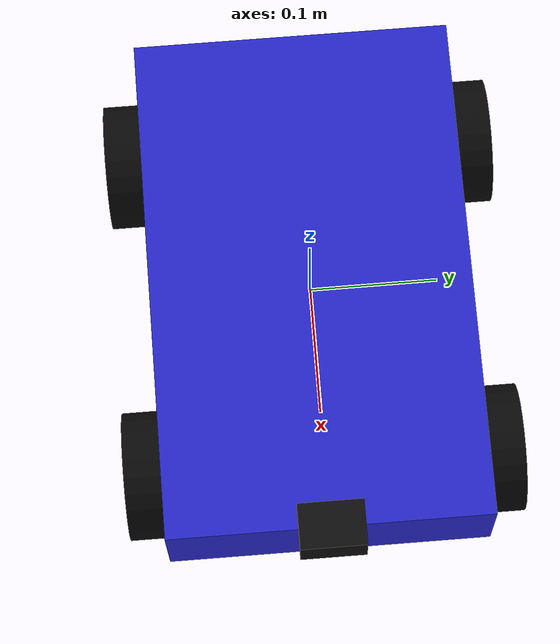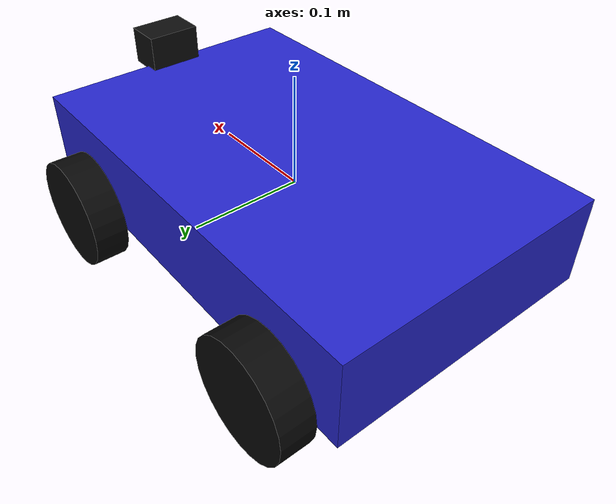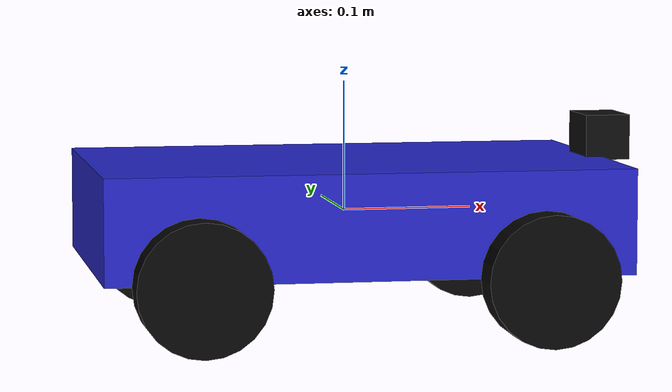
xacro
<?xml version="1.0"?>

<robot xmlns:xacro="http://www.ros.org/wiki/xacro" name="iot_car">

  <!-- Zusätzliche Xacro-Dateien                                 -->

  <xacro:include filename="camera.xacro"/>

  <!-- Fahrzeugmaße                                              -->
  <!-- x = vorne/hinten, y = links/rechts, z = oben/unten       -->

  <xacro:property name="body_length" value="0.40"/>
  <xacro:property name="body_width" value="0.25"/>
  <xacro:property name="body_height" value="0.08"/>

  <xacro:property name="wheel_radius" value="0.05"/>
  <xacro:property name="wheel_width" value="0.03"/>

  <xacro:property name="front_x" value="0.13"/>
  <xacro:property name="rear_x" value="-0.13"/>

  <xacro:property name="left_y" value="0.14"/>
  <xacro:property name="right_y" value="-0.14"/>

  <xacro:property name="wheel_z" value="-0.04"/>

  <!-- Materialien                                               -->

  <material name="blue">
    <color rgba="0.15 0.15 0.8 1.0"/>
  </material>

  <material name="black">
    <color rgba="0.03 0.03 0.03 1.0"/>
  </material>

  <!-- Chassis                                                   -->

  <link name="base_link">

    <visual>
      <geometry>
        <box size="${body_length} ${body_width} ${body_height}"/>
      </geometry>

      <material name="blue"/>
    </visual>

    <collision>
      <geometry>
        <box size="${body_length} ${body_width} ${body_height}"/>
      </geometry>
    </collision>

    <inertial>
      <mass value="1.0"/>

      <inertia
        ixx="0.00574"
        ixy="0.0"
        ixz="0.0"
        iyy="0.01387"
        iyz="0.0"
        izz="0.01854"/>
    </inertial>

  </link>

  <!-- Frontkamera                                               -->

  <xacro:front_camera parent="base_link"/>

  <!-- Rad-Makro                                                 -->

  <xacro:macro name="wheel_link" params="name">

    <link name="${name}">

      <visual>
        <origin rpy="1.5708 0 0"/>

        <geometry>
          <cylinder
            radius="${wheel_radius}"
            length="${wheel_width}"/>
        </geometry>

        <material name="black"/>
      </visual>

      <collision>
        <origin rpy="1.5708 0 0"/>

        <geometry>
          <cylinder
            radius="${wheel_radius}"
            length="${wheel_width}"/>
        </geometry>
      </collision>

      <inertial>
        <mass value="0.1"/>

        <inertia
          ixx="0.00007"
          ixy="0.0"
          ixz="0.0"
          iyy="0.000125"
          iyz="0.0"
          izz="0.00007"/>
      </inertial>

    </link>

  </xacro:macro>

  <!-- Vorderrad links                                           -->

  <link name="front_left_steering_link">

    <inertial>
      <mass value="0.02"/>

      <inertia
        ixx="0.00001"
        ixy="0.0"
        ixz="0.0"
        iyy="0.00001"
        iyz="0.0"
        izz="0.00001"/>
    </inertial>

  </link>

  <joint name="front_left_steering_joint" type="revolute">

    <parent link="base_link"/>
    <child link="front_left_steering_link"/>

    <origin xyz="${front_x} ${left_y} ${wheel_z}"/>

    <axis xyz="0 0 1"/>

    <limit
      lower="-0.6"
      upper="0.6"
      effort="5.0"
      velocity="2.0"/>

    <dynamics damping="0.5"/>

  </joint>

  <xacro:wheel_link name="front_left_wheel"/>

  <joint name="front_left_wheel_joint" type="continuous">

    <parent link="front_left_steering_link"/>
    <child link="front_left_wheel"/>

    <axis xyz="0 1 0"/>

    <dynamics damping="0.05"/>

  </joint>

  <!-- Vorderrad rechts                                          -->

  <link name="front_right_steering_link">

    <inertial>
      <mass value="0.02"/>

      <inertia
        ixx="0.00001"
        ixy="0.0"
        ixz="0.0"
        iyy="0.00001"
        iyz="0.0"
        izz="0.00001"/>
    </inertial>

  </link>

  <joint name="front_right_steering_joint" type="revolute">

    <parent link="base_link"/>
    <child link="front_right_steering_link"/>

    <origin xyz="${front_x} ${right_y} ${wheel_z}"/>

    <axis xyz="0 0 1"/>

    <limit
      lower="-0.6"
      upper="0.6"
      effort="5.0"
      velocity="2.0"/>

    <dynamics damping="0.5"/>

  </joint>

  <xacro:wheel_link name="front_right_wheel"/>

  <joint name="front_right_wheel_joint" type="continuous">

    <parent link="front_right_steering_link"/>
    <child link="front_right_wheel"/>

    <axis xyz="0 1 0"/>

    <dynamics damping="0.05"/>

  </joint>

  <!-- Hinterrad links                                           -->

  <xacro:wheel_link name="rear_left_wheel"/>

  <joint name="rear_left_wheel_joint" type="continuous">

    <parent link="base_link"/>
    <child link="rear_left_wheel"/>

    <origin xyz="${rear_x} ${left_y} ${wheel_z}"/>

    <axis xyz="0 1 0"/>

    <dynamics damping="0.05"/>

  </joint>

  <!-- Hinterrad rechts                                          -->

  <xacro:wheel_link name="rear_right_wheel"/>

  <joint name="rear_right_wheel_joint" type="continuous">

    <parent link="base_link"/>
    <child link="rear_right_wheel"/>

    <origin xyz="${rear_x} ${right_y} ${wheel_z}"/>

    <axis xyz="0 1 0"/>

    <dynamics damping="0.05"/>

  </joint>

  <!-- ROS 2 Control                                             -->

  <ros2_control name="GazeboSimSystem" type="system">

    <hardware>
      <plugin>gz_ros2_control/GazeboSimSystem</plugin>
    </hardware>

    <joint name="rear_right_wheel_joint">

      <command_interface name="velocity"/>

      <state_interface name="position"/>
      <state_interface name="velocity"/>

    </joint>

    <joint name="rear_left_wheel_joint">

      <command_interface name="velocity"/>

      <state_interface name="position"/>
      <state_interface name="velocity"/>

    </joint>

    <joint name="front_right_steering_joint">

      <command_interface name="position">
        <param name="min">-0.6</param>
        <param name="max">0.6</param>
      </command_interface>

      <state_interface name="position"/>
      <state_interface name="velocity"/>

    </joint>

    <joint name="front_left_steering_joint">

      <command_interface name="position">
        <param name="min">-0.6</param>
        <param name="max">0.6</param>
      </command_interface>

      <state_interface name="position"/>
      <state_interface name="velocity"/>

    </joint>

    <joint name="front_right_wheel_joint">

      <state_interface name="position"/>
      <state_interface name="velocity"/>

    </joint>

    <joint name="front_left_wheel_joint">

      <state_interface name="position"/>
      <state_interface name="velocity"/>

    </joint>

  </ros2_control>

  <!-- Gazebo ROS 2 Control Plugin                               -->

  <gazebo>

    <plugin
      filename="libgz_ros2_control-system.so"
      name="gz_ros2_control::GazeboSimROS2ControlPlugin">

      <parameters>
        $(find iot_car_description)/config/iot_car_controllers.yaml
      </parameters>

    </plugin>

  </gazebo>

  <!-- Ground-Truth-Fahrzeugposition                             -->

  <gazebo>

    <plugin
      filename="gz-sim-pose-publisher-system"
      name="gz::sim::systems::PosePublisher">

      <publish_link_pose>false</publish_link_pose>

      <publish_visual_pose>false</publish_visual_pose>

      <publish_collision_pose>false</publish_collision_pose>

      <publish_sensor_pose>false</publish_sensor_pose>

      <publish_model_pose>true</publish_model_pose>

      <publish_nested_model_pose>false</publish_nested_model_pose>

      <use_pose_vector_msg>false</use_pose_vector_msg>

      <update_frequency>30</update_frequency>

      <topic>/car/ground_truth_pose</topic>

    </plugin>

  </gazebo>

</robot>

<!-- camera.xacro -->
<robot xmlns:xacro="http://www.ros.org/wiki/xacro">

  <xacro:macro name="front_camera" params="parent">

    <!-- Kamera-Gehäuse                                         -->

    <link name="camera_link">

      <visual>
        <geometry>
          <box size="0.035 0.05 0.035"/>
        </geometry>

        <material name="camera_black">
          <color rgba="0.05 0.05 0.05 1.0"/>
        </material>
      </visual>

      <collision>
        <geometry>
          <box size="0.035 0.05 0.035"/>
        </geometry>
      </collision>

      <inertial>
        <mass value="0.02"/>

        <inertia
          ixx="0.00001"
          ixy="0.0"
          ixz="0.0"
          iyy="0.00001"
          iyz="0.0"
          izz="0.00001"/>
      </inertial>

    </link>

    <!-- Kamera fest mit Chassis verbinden                      -->

    <joint name="camera_joint" type="fixed">

      <parent link="${parent}"/>
      <child link="camera_link"/>

      <origin xyz="0.205 0 0.055" rpy="0 0 0"/>

    </joint>

    <!-- Gazebo Kamera                                           -->

    <gazebo reference="camera_link">

      <sensor name="front_camera" type="camera">

        <topic>/car/camera/image</topic>

        <update_rate>15</update_rate>

        <always_on>true</always_on>

        <visualize>false</visualize>

        <camera>

          <horizontal_fov>1.047</horizontal_fov>

          <image>
            <width>640</width>
            <height>360</height>
            <format>R8G8B8</format>
          </image>

          <clip>
            <near>0.05</near>
            <far>20.0</far>
          </clip>

          <camera_info_topic>
            /car/camera/camera_info
          </camera_info_topic>

        </camera>

      </sensor>

    </gazebo>

  </xacro:macro>

</robot>
